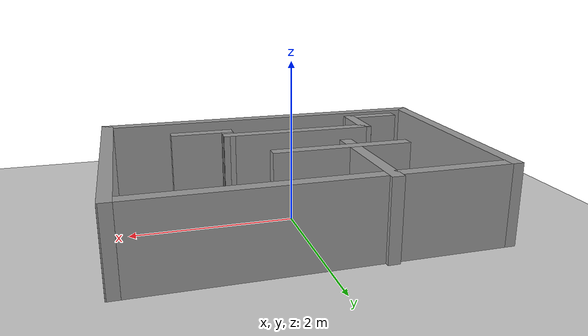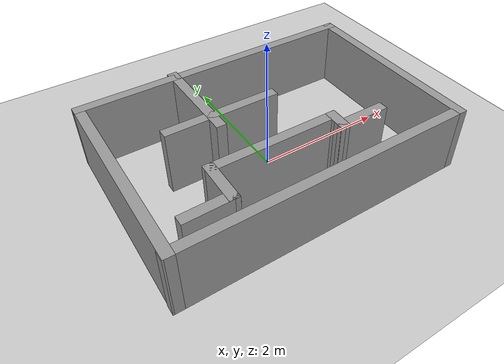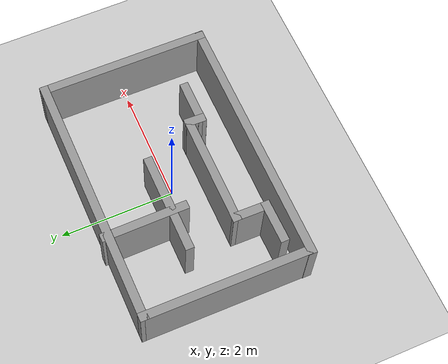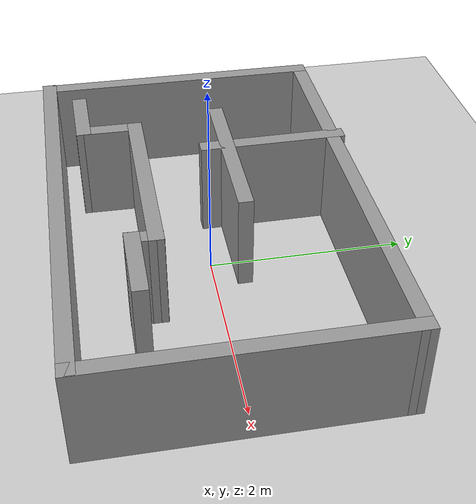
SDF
<sdf version='1.4'>
  <world name='Maze3'>
    <!-- A global light source -->
    <include>
      <uri>model://sun</uri>
    </include>

    <!-- A ground plane -->
    <include>
      <uri>model://ground_plane</uri>
    </include>

    <physics type="ode">
      <real_time_update_rate>1000.0</real_time_update_rate>
      <max_step_size>0.001</max_step_size>
      <real_time_factor>1</real_time_factor>
      <ode>
        <solver>
          <type>quick</type>
          <iters>150</iters>
          <precon_iters>0</precon_iters>
          <sor>1.400000</sor>
          <use_dynamic_moi_rescaling>1</use_dynamic_moi_rescaling>
        </solver>
        <constraints>
          <cfm>0.00001</cfm>
          <erp>0.2</erp>
          <contact_max_correcting_vel>2000.000000</contact_max_correcting_vel>
          <contact_surface_layer>0.01000</contact_surface_layer>
        </constraints>
      </ode>
    </physics>

    <!-- A turtlebot symbol -->
    <include>
      <uri>model://Maze3</uri>
    </include>

    <scene>
      <ambient>0.4 0.4 0.4 1</ambient>
      <background>0.7 0.7 0.7 1</background>
      <shadows>true</shadows>
    </scene>

    <gui fullscreen='0'>
      <camera name='user_camera'>
        <pose>0.8 0.0 12.0 0 1.5708 0</pose>
        <view_controller>orbit</view_controller>
      </camera>
    </gui>
  </world>
</sdf>

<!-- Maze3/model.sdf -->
<sdf version='1.6'>
  <model name='Maze3'>
    <link name='Wall_10'>
      <pose frame=''>-1.51862 -1.13516 0 0 -0 0.013222</pose>
      <self_collide>0</self_collide>
      <enable_wind>0</enable_wind>
      <kinematic>0</kinematic>
      <visual name='Wall_10_Visual'>
        <pose frame=''>0 0 0.5 0 -0 0</pose>
        <geometry>
          <box>
            <size>0.754962 0.15 1</size>
          </box>
        </geometry>
        <material>
          <script>
            <uri>file://media/materials/scripts/gazebo.material</uri>
            <name>Gazebo/Grey</name>
          </script>
          <ambient>1 1 1 1</ambient>
        </material>
        <meta>
          <layer>0</layer>
        </meta>
        <transparency>0</transparency>
        <cast_shadows>1</cast_shadows>
      </visual>
      <collision name='Wall_10_Collision'>
        <laser_retro>0</laser_retro>
        <max_contacts>10</max_contacts>
        <pose frame=''>0 0 0.5 0 -0 0</pose>
        <geometry>
          <box>
            <size>0.754962 0.15 1</size>
          </box>
        </geometry>
        <surface>
          <friction>
            <ode>
              <mu>1</mu>
              <mu2>1</mu2>
              <fdir1>0 0 0</fdir1>
              <slip1>0</slip1>
              <slip2>0</slip2>
            </ode>
            <torsional>
              <coefficient>1</coefficient>
              <patch_radius>0</patch_radius>
              <surface_radius>0</surface_radius>
              <use_patch_radius>1</use_patch_radius>
              <ode>
                <slip>0</slip>
              </ode>
            </torsional>
          </friction>
          <bounce>
            <restitution_coefficient>0</restitution_coefficient>
            <threshold>1e+06</threshold>
          </bounce>
          <contact>
            <collide_without_contact>0</collide_without_contact>
            <collide_without_contact_bitmask>1</collide_without_contact_bitmask>
            <collide_bitmask>1</collide_bitmask>
            <ode>
              <soft_cfm>0</soft_cfm>
              <soft_erp>0.2</soft_erp>
              <kp>1e+13</kp>
              <kd>1</kd>
              <max_vel>0.01</max_vel>
              <min_depth>0</min_depth>
            </ode>
            <bullet>
              <split_impulse>1</split_impulse>
              <split_impulse_penetration_threshold>-0.01</split_impulse_penetration_threshold>
              <soft_cfm>0</soft_cfm>
              <soft_erp>0.2</soft_erp>
              <kp>1e+13</kp>
              <kd>1</kd>
            </bullet>
          </contact>
        </surface>
      </collision>
    </link>
    <link name='Wall_11'>
      <pose frame=''>-1.21212 -0.862664 0 0 -0 1.5559</pose>
      <self_collide>0</self_collide>
      <enable_wind>0</enable_wind>
      <kinematic>0</kinematic>
      <visual name='Wall_11_Visual'>
        <pose frame=''>0 0 0.5 0 -0 0</pose>
        <geometry>
          <box>
            <size>0.686862 0.15 1</size>
          </box>
        </geometry>
        <material>
          <script>
            <uri>file://media/materials/scripts/gazebo.material</uri>
            <name>Gazebo/Grey</name>
          </script>
          <ambient>1 1 1 1</ambient>
        </material>
        <meta>
          <layer>0</layer>
        </meta>
        <transparency>0</transparency>
        <cast_shadows>1</cast_shadows>
      </visual>
      <collision name='Wall_11_Collision'>
        <laser_retro>0</laser_retro>
        <max_contacts>10</max_contacts>
        <pose frame=''>0 0 0.5 0 -0 0</pose>
        <geometry>
          <box>
            <size>0.686862 0.15 1</size>
          </box>
        </geometry>
        <surface>
          <friction>
            <ode>
              <mu>1</mu>
              <mu2>1</mu2>
              <fdir1>0 0 0</fdir1>
              <slip1>0</slip1>
              <slip2>0</slip2>
            </ode>
            <torsional>
              <coefficient>1</coefficient>
              <patch_radius>0</patch_radius>
              <surface_radius>0</surface_radius>
              <use_patch_radius>1</use_patch_radius>
              <ode>
                <slip>0</slip>
              </ode>
            </torsional>
          </friction>
          <bounce>
            <restitution_coefficient>0</restitution_coefficient>
            <threshold>1e+06</threshold>
          </bounce>
          <contact>
            <collide_without_contact>0</collide_without_contact>
            <collide_without_contact_bitmask>1</collide_without_contact_bitmask>
            <collide_bitmask>1</collide_bitmask>
            <ode>
              <soft_cfm>0</soft_cfm>
              <soft_erp>0.2</soft_erp>
              <kp>1e+13</kp>
              <kd>1</kd>
              <max_vel>0.01</max_vel>
              <min_depth>0</min_depth>
            </ode>
            <bullet>
              <split_impulse>1</split_impulse>
              <split_impulse_penetration_threshold>-0.01</split_impulse_penetration_threshold>
              <soft_cfm>0</soft_cfm>
              <soft_erp>0.2</soft_erp>
              <kp>1e+13</kp>
              <kd>1</kd>
            </bullet>
          </contact>
        </surface>
      </collision>
    </link>
    <link name='Wall_12'>
      <pose frame=''>-0.270618 -0.594164 0 0 -0 0</pose>
      <self_collide>0</self_collide>
      <enable_wind>0</enable_wind>
      <kinematic>0</kinematic>
      <visual name='Wall_12_Visual'>
        <pose frame=''>0 0 0.5 0 -0 0</pose>
        <geometry>
          <box>
            <size>2.02524 0.15 1</size>
          </box>
        </geometry>
        <material>
          <script>
            <uri>file://media/materials/scripts/gazebo.material</uri>
            <name>Gazebo/Grey</name>
          </script>
          <ambient>1 1 1 1</ambient>
        </material>
        <meta>
          <layer>0</layer>
        </meta>
        <transparency>0</transparency>
        <cast_shadows>1</cast_shadows>
      </visual>
      <collision name='Wall_12_Collision'>
        <laser_retro>0</laser_retro>
        <max_contacts>10</max_contacts>
        <pose frame=''>0 0 0.5 0 -0 0</pose>
        <geometry>
          <box>
            <size>2.02524 0.15 1</size>
          </box>
        </geometry>
        <surface>
          <friction>
            <ode>
              <mu>1</mu>
              <mu2>1</mu2>
              <fdir1>0 0 0</fdir1>
              <slip1>0</slip1>
              <slip2>0</slip2>
            </ode>
            <torsional>
              <coefficient>1</coefficient>
              <patch_radius>0</patch_radius>
              <surface_radius>0</surface_radius>
              <use_patch_radius>1</use_patch_radius>
              <ode>
                <slip>0</slip>
              </ode>
            </torsional>
          </friction>
          <bounce>
            <restitution_coefficient>0</restitution_coefficient>
            <threshold>1e+06</threshold>
          </bounce>
          <contact>
            <collide_without_contact>0</collide_without_contact>
            <collide_without_contact_bitmask>1</collide_without_contact_bitmask>
            <collide_bitmask>1</collide_bitmask>
            <ode>
              <soft_cfm>0</soft_cfm>
              <soft_erp>0.2</soft_erp>
              <kp>1e+13</kp>
              <kd>1</kd>
              <max_vel>0.01</max_vel>
              <min_depth>0</min_depth>
            </ode>
            <bullet>
              <split_impulse>1</split_impulse>
              <split_impulse_penetration_threshold>-0.01</split_impulse_penetration_threshold>
              <soft_cfm>0</soft_cfm>
              <soft_erp>0.2</soft_erp>
              <kp>1e+13</kp>
              <kd>1</kd>
            </bullet>
          </contact>
        </surface>
      </collision>
    </link>
    <link name='Wall_13'>
      <pose frame=''>0.662882 -0.700164 0 0 0 -1.60851</pose>
      <self_collide>0</self_collide>
      <enable_wind>0</enable_wind>
      <kinematic>0</kinematic>
      <visual name='Wall_13_Visual'>
        <pose frame=''>0 0 0.5 0 -0 0</pose>
        <geometry>
          <box>
            <size>0.36172 0.15 1</size>
          </box>
        </geometry>
        <material>
          <script>
            <uri>file://media/materials/scripts/gazebo.material</uri>
            <name>Gazebo/Grey</name>
          </script>
          <ambient>1 1 1 1</ambient>
        </material>
        <meta>
          <layer>0</layer>
        </meta>
        <transparency>0</transparency>
        <cast_shadows>1</cast_shadows>
      </visual>
      <collision name='Wall_13_Collision'>
        <laser_retro>0</laser_retro>
        <max_contacts>10</max_contacts>
        <pose frame=''>0 0 0.5 0 -0 0</pose>
        <geometry>
          <box>
            <size>0.36172 0.15 1</size>
          </box>
        </geometry>
        <surface>
          <friction>
            <ode>
              <mu>1</mu>
              <mu2>1</mu2>
              <fdir1>0 0 0</fdir1>
              <slip1>0</slip1>
              <slip2>0</slip2>
            </ode>
            <torsional>
              <coefficient>1</coefficient>
              <patch_radius>0</patch_radius>
              <surface_radius>0</surface_radius>
              <use_patch_radius>1</use_patch_radius>
              <ode>
                <slip>0</slip>
              </ode>
            </torsional>
          </friction>
          <bounce>
            <restitution_coefficient>0</restitution_coefficient>
            <threshold>1e+06</threshold>
          </bounce>
          <contact>
            <collide_without_contact>0</collide_without_contact>
            <collide_without_contact_bitmask>1</collide_without_contact_bitmask>
            <collide_bitmask>1</collide_bitmask>
            <ode>
              <soft_cfm>0</soft_cfm>
              <soft_erp>0.2</soft_erp>
              <kp>1e+13</kp>
              <kd>1</kd>
              <max_vel>0.01</max_vel>
              <min_depth>0</min_depth>
            </ode>
            <bullet>
              <split_impulse>1</split_impulse>
              <split_impulse_penetration_threshold>-0.01</split_impulse_penetration_threshold>
              <soft_cfm>0</soft_cfm>
              <soft_erp>0.2</soft_erp>
              <kp>1e+13</kp>
              <kd>1</kd>
            </bullet>
          </contact>
        </surface>
      </collision>
    </link>
    <link name='Wall_14'>
      <pose frame=''>0.985382 -0.806164 0 0 -0 0</pose>
      <self_collide>0</self_collide>
      <enable_wind>0</enable_wind>
      <kinematic>0</kinematic>
      <visual name='Wall_14_Visual'>
        <pose frame=''>0 0 0.5 0 -0 0</pose>
        <geometry>
          <box>
            <size>0.802974 0.15 1</size>
          </box>
        </geometry>
        <material>
          <script>
            <uri>file://media/materials/scripts/gazebo.material</uri>
            <name>Gazebo/Grey</name>
          </script>
          <ambient>1 1 1 1</ambient>
        </material>
        <meta>
          <layer>0</layer>
        </meta>
        <transparency>0</transparency>
        <cast_shadows>1</cast_shadows>
      </visual>
      <collision name='Wall_14_Collision'>
        <laser_retro>0</laser_retro>
        <max_contacts>10</max_contacts>
        <pose frame=''>0 0 0.5 0 -0 0</pose>
        <geometry>
          <box>
            <size>0.802974 0.15 1</size>
          </box>
        </geometry>
        <surface>
          <friction>
            <ode>
              <mu>1</mu>
              <mu2>1</mu2>
              <fdir1>0 0 0</fdir1>
              <slip1>0</slip1>
              <slip2>0</slip2>
            </ode>
            <torsional>
              <coefficient>1</coefficient>
              <patch_radius>0</patch_radius>
              <surface_radius>0</surface_radius>
              <use_patch_radius>1</use_patch_radius>
              <ode>
                <slip>0</slip>
              </ode>
            </torsional>
          </friction>
          <bounce>
            <restitution_coefficient>0</restitution_coefficient>
            <threshold>1e+06</threshold>
          </bounce>
          <contact>
            <collide_without_contact>0</collide_without_contact>
            <collide_without_contact_bitmask>1</collide_without_contact_bitmask>
            <collide_bitmask>1</collide_bitmask>
            <ode>
              <soft_cfm>0</soft_cfm>
              <soft_erp>0.2</soft_erp>
              <kp>1e+13</kp>
              <kd>1</kd>
              <max_vel>0.01</max_vel>
              <min_depth>0</min_depth>
            </ode>
            <bullet>
              <split_impulse>1</split_impulse>
              <split_impulse_penetration_threshold>-0.01</split_impulse_penetration_threshold>
              <soft_cfm>0</soft_cfm>
              <soft_erp>0.2</soft_erp>
              <kp>1e+13</kp>
              <kd>1</kd>
            </bullet>
          </contact>
        </surface>
      </collision>
    </link>
    <link name='Wall_16'>
      <pose frame=''>-0.705618 0.772336 0 0 -0 1.57595</pose>
      <self_collide>0</self_collide>
      <enable_wind>0</enable_wind>
      <kinematic>0</kinematic>
      <visual name='Wall_16_Visual'>
        <pose frame=''>0 0 0.5 0 -0 0</pose>
        <geometry>
          <box>
            <size>1.50711 0.15 1</size>
          </box>
        </geometry>
        <material>
          <script>
            <uri>file://media/materials/scripts/gazebo.material</uri>
            <name>Gazebo/Grey</name>
          </script>
          <ambient>1 1 1 1</ambient>
        </material>
        <meta>
          <layer>0</layer>
        </meta>
        <transparency>0</transparency>
        <cast_shadows>1</cast_shadows>
      </visual>
      <collision name='Wall_16_Collision'>
        <laser_retro>0</laser_retro>
        <max_contacts>10</max_contacts>
        <pose frame=''>0 0 0.5 0 -0 0</pose>
        <geometry>
          <box>
            <size>1.50711 0.15 1</size>
          </box>
        </geometry>
        <surface>
          <friction>
            <ode>
              <mu>1</mu>
              <mu2>1</mu2>
              <fdir1>0 0 0</fdir1>
              <slip1>0</slip1>
              <slip2>0</slip2>
            </ode>
            <torsional>
              <coefficient>1</coefficient>
              <patch_radius>0</patch_radius>
              <surface_radius>0</surface_radius>
              <use_patch_radius>1</use_patch_radius>
              <ode>
                <slip>0</slip>
              </ode>
            </torsional>
          </friction>
          <bounce>
            <restitution_coefficient>0</restitution_coefficient>
            <threshold>1e+06</threshold>
          </bounce>
          <contact>
            <collide_without_contact>0</collide_without_contact>
            <collide_without_contact_bitmask>1</collide_without_contact_bitmask>
            <collide_bitmask>1</collide_bitmask>
            <ode>
              <soft_cfm>0</soft_cfm>
              <soft_erp>0.2</soft_erp>
              <kp>1e+13</kp>
              <kd>1</kd>
              <max_vel>0.01</max_vel>
              <min_depth>0</min_depth>
            </ode>
            <bullet>
              <split_impulse>1</split_impulse>
              <split_impulse_penetration_threshold>-0.01</split_impulse_penetration_threshold>
              <soft_cfm>0</soft_cfm>
              <soft_erp>0.2</soft_erp>
              <kp>1e+13</kp>
              <kd>1</kd>
            </bullet>
          </contact>
        </surface>
      </collision>
    </link>
    <link name='Wall_18'>
      <pose frame=''>-0.552118 0.29745 0 0 -0 3.14159</pose>
      <self_collide>0</self_collide>
      <enable_wind>0</enable_wind>
      <kinematic>0</kinematic>
      <gravity>1</gravity>
      <inertial>
        <mass>1</mass>
        <pose frame=''>0 0 0 0 -0 0</pose>
        <inertia>
          <ixx>1</ixx>
          <ixy>0</ixy>
          <ixz>0</ixz>
          <iyy>1</iyy>
          <iyz>0</iyz>
          <izz>1</izz>
        </inertia>
      </inertial>
      <visual name='Wall_18_Visual'>
        <pose frame=''>0 0 0.5 0 -0 0</pose>
        <geometry>
          <box>
            <size>1.75 0.15 1</size>
          </box>
        </geometry>
        <material>
          <script>
            <uri>file://media/materials/scripts/gazebo.material</uri>
            <name>Gazebo/Grey</name>
          </script>
          <ambient>1 1 1 1</ambient>
          <shader type='vertex'>
            <normal_map>__default__</normal_map>
          </shader>
          <diffuse>0.7 0.7 0.7 1</diffuse>
          <specular>0.01 0.01 0.01 1</specular>
          <emissive>0 0 0 1</emissive>
        </material>
        <meta>
          <layer>0</layer>
        </meta>
        <transparency>0</transparency>
        <cast_shadows>1</cast_shadows>
      </visual>
      <collision name='Wall_18_Collision'>
        <laser_retro>0</laser_retro>
        <max_contacts>10</max_contacts>
        <pose frame=''>0 0 0.5 0 -0 0</pose>
        <geometry>
          <box>
            <size>1.75 0.15 1</size>
          </box>
        </geometry>
        <surface>
          <friction>
            <ode>
              <mu>1</mu>
              <mu2>1</mu2>
              <fdir1>0 0 0</fdir1>
              <slip1>0</slip1>
              <slip2>0</slip2>
            </ode>
            <torsional>
              <coefficient>1</coefficient>
              <patch_radius>0</patch_radius>
              <surface_radius>0</surface_radius>
              <use_patch_radius>1</use_patch_radius>
              <ode>
                <slip>0</slip>
              </ode>
            </torsional>
          </friction>
          <bounce>
            <restitution_coefficient>0</restitution_coefficient>
            <threshold>1e+06</threshold>
          </bounce>
          <contact>
            <collide_without_contact>0</collide_without_contact>
            <collide_without_contact_bitmask>1</collide_without_contact_bitmask>
            <collide_bitmask>1</collide_bitmask>
            <ode>
              <soft_cfm>0</soft_cfm>
              <soft_erp>0.2</soft_erp>
              <kp>1e+13</kp>
              <kd>1</kd>
              <max_vel>0.01</max_vel>
              <min_depth>0</min_depth>
            </ode>
            <bullet>
              <split_impulse>1</split_impulse>
              <split_impulse_penetration_threshold>-0.01</split_impulse_penetration_threshold>
              <soft_cfm>0</soft_cfm>
              <soft_erp>0.2</soft_erp>
              <kp>1e+13</kp>
              <kd>1</kd>
            </bullet>
          </contact>
        </surface>
      </collision>
    </link>
    <link name='Wall_5'>
      <pose frame=''>-2.17141 -0.02517 0 0 0 -1.57591</pose>
      <self_collide>0</self_collide>
      <enable_wind>0</enable_wind>
      <kinematic>0</kinematic>
      <visual name='Wall_5_Visual'>
        <pose frame=''>0 0 0.5 0 -0 0</pose>
        <geometry>
          <box>
            <size>3.00062 0.15 1</size>
          </box>
        </geometry>
        <material>
          <script>
            <uri>file://media/materials/scripts/gazebo.material</uri>
            <name>Gazebo/Grey</name>
          </script>
          <ambient>1 1 1 1</ambient>
        </material>
        <meta>
          <layer>0</layer>
        </meta>
        <transparency>0</transparency>
        <cast_shadows>1</cast_shadows>
      </visual>
      <collision name='Wall_5_Collision'>
        <laser_retro>0</laser_retro>
        <max_contacts>10</max_contacts>
        <pose frame=''>0 0 0.5 0 -0 0</pose>
        <geometry>
          <box>
            <size>3.00062 0.15 1</size>
          </box>
        </geometry>
        <surface>
          <friction>
            <ode>
              <mu>1</mu>
              <mu2>1</mu2>
              <fdir1>0 0 0</fdir1>
              <slip1>0</slip1>
              <slip2>0</slip2>
            </ode>
            <torsional>
              <coefficient>1</coefficient>
              <patch_radius>0</patch_radius>
              <surface_radius>0</surface_radius>
              <use_patch_radius>1</use_patch_radius>
              <ode>
                <slip>0</slip>
              </ode>
            </torsional>
          </friction>
          <bounce>
            <restitution_coefficient>0</restitution_coefficient>
            <threshold>1e+06</threshold>
          </bounce>
          <contact>
            <collide_without_contact>0</collide_without_contact>
            <collide_without_contact_bitmask>1</collide_without_contact_bitmask>
            <collide_bitmask>1</collide_bitmask>
            <ode>
              <soft_cfm>0</soft_cfm>
              <soft_erp>0.2</soft_erp>
              <kp>1e+13</kp>
              <kd>1</kd>
              <max_vel>0.01</max_vel>
              <min_depth>0</min_depth>
            </ode>
            <bullet>
              <split_impulse>1</split_impulse>
              <split_impulse_penetration_threshold>-0.01</split_impulse_penetration_threshold>
              <soft_cfm>0</soft_cfm>
              <soft_erp>0.2</soft_erp>
              <kp>1e+13</kp>
              <kd>1</kd>
            </bullet>
          </contact>
        </surface>
      </collision>
    </link>
    <link name='Wall_6'>
      <pose frame=''>-0.011258 -1.45038 0 0 0 -9.8e-05</pose>
      <self_collide>0</self_collide>
      <enable_wind>0</enable_wind>
      <kinematic>0</kinematic>
      <visual name='Wall_6_Visual'>
        <pose frame=''>0 0 0.5 0 -0 0</pose>
        <geometry>
          <box>
            <size>4.5 0.15 1</size>
          </box>
        </geometry>
        <material>
          <script>
            <uri>file://media/materials/scripts/gazebo.material</uri>
            <name>Gazebo/Grey</name>
          </script>
          <ambient>1 1 1 1</ambient>
        </material>
        <meta>
          <layer>0</layer>
        </meta>
        <transparency>0</transparency>
        <cast_shadows>1</cast_shadows>
      </visual>
      <collision name='Wall_6_Collision'>
        <laser_retro>0</laser_retro>
        <max_contacts>10</max_contacts>
        <pose frame=''>0 0 0.5 0 -0 0</pose>
        <geometry>
          <box>
            <size>4.5 0.15 1</size>
          </box>
        </geometry>
        <surface>
          <friction>
            <ode>
              <mu>1</mu>
              <mu2>1</mu2>
              <fdir1>0 0 0</fdir1>
              <slip1>0</slip1>
              <slip2>0</slip2>
            </ode>
            <torsional>
              <coefficient>1</coefficient>
              <patch_radius>0</patch_radius>
              <surface_radius>0</surface_radius>
              <use_patch_radius>1</use_patch_radius>
              <ode>
                <slip>0</slip>
              </ode>
            </torsional>
          </friction>
          <bounce>
            <restitution_coefficient>0</restitution_coefficient>
            <threshold>1e+06</threshold>
          </bounce>
          <contact>
            <collide_without_contact>0</collide_without_contact>
            <collide_without_contact_bitmask>1</collide_without_contact_bitmask>
            <collide_bitmask>1</collide_bitmask>
            <ode>
              <soft_cfm>0</soft_cfm>
              <soft_erp>0.2</soft_erp>
              <kp>1e+13</kp>
              <kd>1</kd>
              <max_vel>0.01</max_vel>
              <min_depth>0</min_depth>
            </ode>
            <bullet>
              <split_impulse>1</split_impulse>
              <split_impulse_penetration_threshold>-0.01</split_impulse_penetration_threshold>
              <soft_cfm>0</soft_cfm>
              <soft_erp>0.2</soft_erp>
              <kp>1e+13</kp>
              <kd>1</kd>
            </bullet>
          </contact>
        </surface>
      </collision>
    </link>
    <link name='Wall_7'>
      <pose frame=''>2.17859 -0.025595 0 0 -0 1.56568</pose>
      <self_collide>0</self_collide>
      <enable_wind>0</enable_wind>
      <kinematic>0</kinematic>
      <visual name='Wall_7_Visual'>
        <pose frame=''>0 0 0.5 0 -0 0</pose>
        <geometry>
          <box>
            <size>3.00062 0.15 1</size>
          </box>
        </geometry>
        <material>
          <script>
            <uri>file://media/materials/scripts/gazebo.material</uri>
            <name>Gazebo/Grey</name>
          </script>
          <ambient>1 1 1 1</ambient>
        </material>
        <meta>
          <layer>0</layer>
        </meta>
        <transparency>0</transparency>
        <cast_shadows>1</cast_shadows>
      </visual>
      <collision name='Wall_7_Collision'>
        <laser_retro>0</laser_retro>
        <max_contacts>10</max_contacts>
        <pose frame=''>0 0 0.5 0 -0 0</pose>
        <geometry>
          <box>
            <size>3.00062 0.15 1</size>
          </box>
        </geometry>
        <surface>
          <friction>
            <ode>
              <mu>1</mu>
              <mu2>1</mu2>
              <fdir1>0 0 0</fdir1>
              <slip1>0</slip1>
              <slip2>0</slip2>
            </ode>
            <torsional>
              <coefficient>1</coefficient>
              <patch_radius>0</patch_radius>
              <surface_radius>0</surface_radius>
              <use_patch_radius>1</use_patch_radius>
              <ode>
                <slip>0</slip>
              </ode>
            </torsional>
          </friction>
          <bounce>
            <restitution_coefficient>0</restitution_coefficient>
            <threshold>1e+06</threshold>
          </bounce>
          <contact>
            <collide_without_contact>0</collide_without_contact>
            <collide_without_contact_bitmask>1</collide_without_contact_bitmask>
            <collide_bitmask>1</collide_bitmask>
            <ode>
              <soft_cfm>0</soft_cfm>
              <soft_erp>0.2</soft_erp>
              <kp>1e+13</kp>
              <kd>1</kd>
              <max_vel>0.01</max_vel>
              <min_depth>0</min_depth>
            </ode>
            <bullet>
              <split_impulse>1</split_impulse>
              <split_impulse_penetration_threshold>-0.01</split_impulse_penetration_threshold>
              <soft_cfm>0</soft_cfm>
              <soft_erp>0.2</soft_erp>
              <kp>1e+13</kp>
              <kd>1</kd>
            </bullet>
          </contact>
        </surface>
      </collision>
    </link>
    <link name='Wall_8'>
      <pose frame=''>0.010882 1.39961 0 0 -0 3.14149</pose>
      <self_collide>0</self_collide>
      <enable_wind>0</enable_wind>
      <kinematic>0</kinematic>
      <visual name='Wall_8_Visual'>
        <pose frame=''>0 0 0.5 0 -0 0</pose>
        <geometry>
          <box>
            <size>4.5 0.15 1</size>
          </box>
        </geometry>
        <material>
          <script>
            <uri>file://media/materials/scripts/gazebo.material</uri>
            <name>Gazebo/Grey</name>
          </script>
          <ambient>1 1 1 1</ambient>
        </material>
        <meta>
          <layer>0</layer>
        </meta>
        <transparency>0</transparency>
        <cast_shadows>1</cast_shadows>
      </visual>
      <collision name='Wall_8_Collision'>
        <laser_retro>0</laser_retro>
        <max_contacts>10</max_contacts>
        <pose frame=''>0 0 0.5 0 -0 0</pose>
        <geometry>
          <box>
            <size>4.5 0.15 1</size>
          </box>
        </geometry>
        <surface>
          <friction>
            <ode>
              <mu>1</mu>
              <mu2>1</mu2>
              <fdir1>0 0 0</fdir1>
              <slip1>0</slip1>
              <slip2>0</slip2>
            </ode>
            <torsional>
              <coefficient>1</coefficient>
              <patch_radius>0</patch_radius>
              <surface_radius>0</surface_radius>
              <use_patch_radius>1</use_patch_radius>
              <ode>
                <slip>0</slip>
              </ode>
            </torsional>
          </friction>
          <bounce>
            <restitution_coefficient>0</restitution_coefficient>
            <threshold>1e+06</threshold>
          </bounce>
          <contact>
            <collide_without_contact>0</collide_without_contact>
            <collide_without_contact_bitmask>1</collide_without_contact_bitmask>
            <collide_bitmask>1</collide_bitmask>
            <ode>
              <soft_cfm>0</soft_cfm>
              <soft_erp>0.2</soft_erp>
              <kp>1e+13</kp>
              <kd>1</kd>
              <max_vel>0.01</max_vel>
              <min_depth>0</min_depth>
            </ode>
            <bullet>
              <split_impulse>1</split_impulse>
              <split_impulse_penetration_threshold>-0.01</split_impulse_penetration_threshold>
              <soft_cfm>0</soft_cfm>
              <soft_erp>0.2</soft_erp>
              <kp>1e+13</kp>
              <kd>1</kd>
            </bullet>
          </contact>
        </surface>
      </collision>
    </link>
    <static>1</static>
    <allow_auto_disable>1</allow_auto_disable>
  </model>
</sdf>
